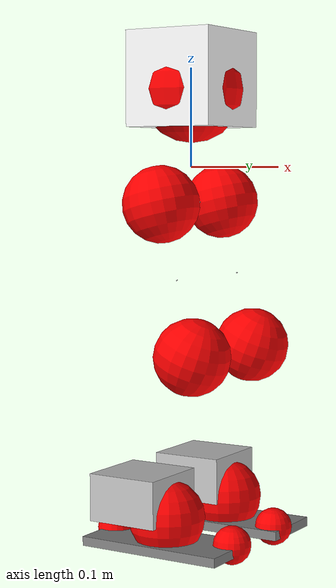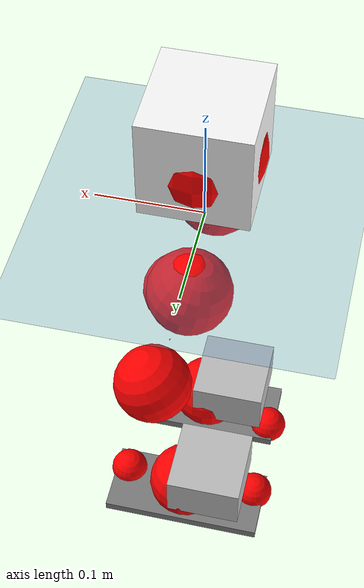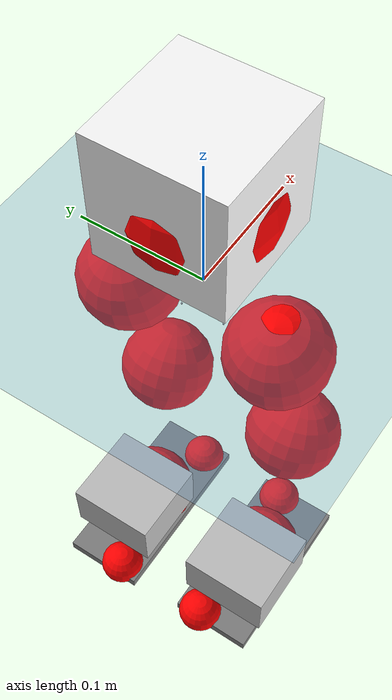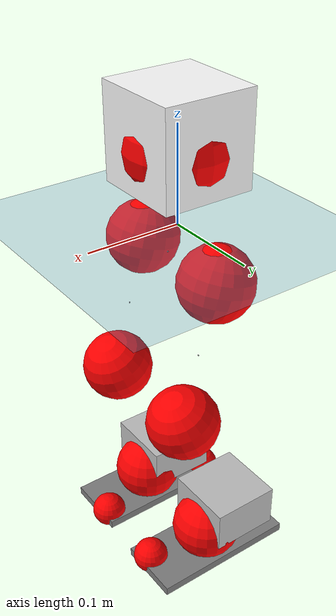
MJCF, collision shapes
<mujoco model="pi_12dof_release_v1">
  <compiler angle="radian" assetdir="assets" balanceinertia="true" inertiafromgeom="false"/>

  <option timestep="0.005" density="1.2" viscosity="2e-05"/>

  <size nkey="1"/>

  <visual>
    <quality shadowsize="8192"/>
    <map shadowclip="0.5"/>
  </visual>

  <default>
    <default class="/">
      <joint armature="0.01" damping="0.01" frictionloss="0.01"/>
      <geom contype="0" conaffinity="0" group="1" solref="-1000 -80"/>
      <site size="0.01 0.005 0.005" group="5"/>
      <general forcelimited="true" biastype="affine" gainprm="20" biasprm="0 -20 -0.5"/>
      <default class="foot">
        <geom size="0.0845 0.036 0.005" type="box" condim="6" group="4" priority="1" friction="0.9 0.2 0.2" solimp="0.015 1 0.005"/>
      </default>
      <default class="reward_collision_sphere">
        <geom group="5" rgba="1 0 0 1"/>
      </default>
    </default>
  </default>

  <asset>
    <texture type="skybox" colorspace="auto" name="//unnamed_texture_0" builtin="gradient" rgb1="0.95 0.95 0.95" rgb2="0.95 0.95 0.95" width="100" height="600"/>
    <texture type="2d" colorspace="auto" name="texplane" builtin="checker" rgb1="0.345 0.575 0.748" rgb2="0.345 0.575 0.748" markrgb="1 1 1" width="512" height="512"/>
    <material name="MatPlane" class="/" texture="texplane" texuniform="true" texrepeat="2 2" specular="0.9"/>
    <mesh name="baselink_1" class="/" file="baselink_1.STL"/>
    <mesh name="r_hip_pitch_link" class="/" file="r_hip_pitch_link.STL"/>
    <mesh name="r_hip_roll_link" class="/" file="r_hip_roll_link.STL"/>
    <mesh name="r_thigh_link" class="/" file="r_thigh_link.STL"/>
    <mesh name="r_calf_link" class="/" file="r_calf_link.STL"/>
    <mesh name="r_ankle_pitch_link" class="/" file="r_ankle_pitch_link.STL"/>
    <mesh name="r_ankle_roll_link" class="/" file="r_ankle_roll_link.STL"/>
    <mesh name="l_hip_pitch_link" class="/" file="l_hip_pitch_link.STL"/>
    <mesh name="l_hip_roll_link" class="/" file="l_hip_roll_link.STL"/>
    <mesh name="l_thigh_link" class="/" file="l_thigh_link.STL"/>
    <mesh name="l_calf_link" class="/" file="l_calf_link.STL"/>
    <mesh name="l_ankle_pitch_link" class="/" file="l_ankle_pitch_link.STL"/>
    <mesh name="l_ankle_roll_link" class="/" file="l_ankle_roll_link.STL"/>
  </asset>

  <worldbody>
    <geom name="floor" class="/" size="100 100 0.125" type="plane" group="0" material="MatPlane"/>
    <light name="toplight_shadow" class="/" pos="0 0 5" dir="0.0990148 0.0990148 -0.990148" type="directional" ambient="0.04 0.04 0.04" diffuse="0.55 0.55 0.55" specular="0.12 0.12 0.12"/>
    <light name="toplight_fill" class="/" pos="0 0 5" dir="0.0990148 0.0990148 -0.990148" type="directional" castshadow="false" ambient="0.04 0.04 0.04" diffuse="0.3 0.3 0.3" specular="0.08 0.08 0.08"/>
    <body name="trunk" pos="-0.000181211 0.000851697 -8.25811e-05" quat="1 -9.67594e-05 -0.000402909 -7.68484e-05">
      <inertial pos="0.00323006 -0.00147043 0.0441127" quat="0.695663 0.00585926 0.0116745 0.71825" mass="1.92442" diaginertia="0.0111696 0.00227416 0.0069322"/>
      <joint name="//unnamed_joint_0" type="free"/>
      <geom name="//unnamed_geom_1" class="/" type="mesh" density="0" rgba="1 1 1 1" mesh="baselink_1"/>
      <geom name="//unnamed_geom_2" class="/" size="0.0483523 0.0483523 0.0483523" pos="0 0 0.0888133" type="box" rgba="1 1 1 1"/>
      <geom name="//unnamed_geom_3" class="reward_collision_sphere" size="0.0531876" pos="0 0 0.0777116"/>
      <site name="imu" class="/" pos="0.000245123 -0.00155762 -0.00155652" size="0.00967047"/>
      <camera name="track" class="/" pos="0 -1.52087 0" quat="0.707107 0.707107 0 0" mode="trackcom"/>
      <camera name="ego_camera" class="/" pos="0.0772905 0 0.19983" quat="-0.5 -0.5 0.5 0.5"/>
      <body name="r_hip_pitch_link" pos="0.000834343 -0.016741 -0.036252" quat="0.992182 2.17569e-06 -0.124801 -1.40424e-05">
        <inertial pos="0.000949418 -0.0427019 -0.000331244" quat="-0.0229293 0.702902 -0.0264635 0.710424" mass="0.33664" diaginertia="0.000127429 2.53059e-05 0.000141463"/>
        <joint name="r_hip_pitch_joint" class="/" pos="0 0 0" axis="0.00411412 -0.999991 -0.000795022" stiffness="0.000384336" range="-1.76637 1.23243" armature="0.00979139" damping="0.0151572" frictionloss="0.00987611"/>
        <geom name="//unnamed_geom_4" class="/" type="mesh" density="0" rgba="0.75294 0.75294 0.75294 1" mesh="r_hip_pitch_link"/>
        <geom name="//unnamed_geom_5" class="/" size="0.000483523 0.000483523 0.000483523" type="box" rgba="0.75294 0.75294 0.75294 1"/>
        <body name="r_hip_roll_link" pos="0.000137854 -0.0432932 -0.000588849" quat="1 0.000159442 0.000175376 0.00027281">
          <inertial pos="-0.0009315 0.000629273 -0.0682198" quat="0.707158 -0.079306 -0.0812369 0.697882" mass="0.348379" diaginertia="0.000389094 7.15185e-05 0.00021709"/>
          <joint name="r_hip_roll_joint" class="/" pos="0 0 0" axis="-0.999995 -0.00291639 -0.00127173" range="-0.119915 0.4931" armature="0.00939672" damping="0.0061519" frictionloss="0.00970646"/>
          <geom name="//unnamed_geom_6" class="/" type="mesh" density="0" rgba="0.75294 0.75294 0.75294 1" mesh="r_hip_roll_link"/>
          <geom name="//unnamed_geom_7" class="/" size="0.000483523 0.000483523 0.000483523" type="box" rgba="0.75294 0.75294 0.75294 1"/>
          <geom name="//unnamed_geom_8" class="reward_collision_sphere" size="0.0386819"/>
          <body name="r_thigh_link" pos="-1.63059e-05 -0.00101018 -0.0768406" quat="1 -7.2159e-05 -0.000142222 -2.20944e-05">
            <inertial pos="0.000384802 0.0012965 -0.0524107" quat="0.737621 0.675215 -0.000668098 0.000557644" mass="0.10294" diaginertia="0.000147045 2.44519e-05 9.88349e-05"/>
            <joint name="r_thigh_joint" class="/" pos="0 0 0" axis="0.000114009 -0.00267481 -0.999996" range="-0.31547 0.578539" armature="0.00952426" damping="0" frictionloss="0.00996503"/>
            <geom name="//unnamed_geom_9" class="/" type="mesh" density="0" rgba="0.75294 0.75294 0.75294 1" mesh="r_thigh_link"/>
            <geom name="//unnamed_geom_10" class="/" size="0.000483523 0.000483523 0.000483523" type="box" rgba="0.75294 0.75294 0.75294 1"/>
            <body name="r_calf_link" pos="-0.00135127 -0.000716863 -0.0773257" quat="0.947606 -0.00016729 0.319442 -0.0001058">
              <inertial pos="-0.000952765 -0.00129477 -0.0771667" quat="0.99998 -0.00297799 -0.000477246 0.00549013" mass="0.739894" diaginertia="0.00413755 0.000890287 0.000294222"/>
              <joint name="r_calf_joint" class="/" pos="0 0 0" axis="-0.00313449 -0.999974 0.00647294" range="-1.63334 0.638738" armature="0.00965181" damping="0.0133528" frictionloss="0.00980088"/>
              <geom name="//unnamed_geom_11" class="/" type="mesh" density="0" rgba="0.75294 0.75294 0.75294 1" mesh="r_calf_link"/>
              <geom name="//unnamed_geom_12" class="/" size="0.000483523 0.000483523 0.000483523" type="box" rgba="0.75294 0.75294 0.75294 1"/>
              <geom name="//unnamed_geom_13" class="reward_collision_sphere" size="0.0386819"/>
              <body name="r_ankle_pitch_link" pos="0.00102096 0.00125853 -0.156134" quat="0.980058 4.35967e-05 -0.198712 -6.47212e-06">
                <inertial pos="0.00424054 0.00365067 0.000227717" quat="0.00132905 0.707213 -0.00201045 0.706997" mass="0.159476" diaginertia="0.000361387 5.6413e-05 0.000202107"/>
                <joint name="r_ankle_pitch_joint" class="/" pos="0 0 0" axis="0.0013122 -0.999999 0.000543058" stiffness="5.45051e-05" range="-1.28173 0.493484" armature="0.00958112" damping="0.00950805" frictionloss="0.00971547"/>
                <geom name="//unnamed_geom_14" class="/" type="mesh" density="0" rgba="0.75294 0.75294 0.75294 1" mesh="r_ankle_pitch_link"/>
                <geom name="//unnamed_geom_15" class="/" size="0.0377148 0.0386819 0.0241762" type="box" rgba="0.75294 0.75294 0.75294 1"/>
                <body name="r_ankle_roll_link" pos="0.0785112 0.00369332 0.000491832" quat="1 0.000140853 9.07614e-05 9.169e-06">
                  <inertial pos="-0.0236434 -0.000838463 -0.0162561" quat="0.558213 0.431182 0.436054 0.558872" mass="0.474562" diaginertia="0.00133613 0.000262629 0.000488546"/>
                  <joint name="r_ankle_roll_joint" class="/" pos="0 0 0" axis="-0.999986 -0.000825118 0.00513731" range="-0.131637 0.14296" armature="0.00976925" damping="0.00252828" frictionloss="0.00969598"/>
                  <geom name="//unnamed_geom_16" class="/" type="mesh" density="0" rgba="0.75294 0.75294 0.75294 1" mesh="r_ankle_roll_link"/>
                  <geom name="//unnamed_geom_17" class="/" type="mesh" rgba="0.75294 0.75294 0.75294 1" mesh="r_ankle_roll_link"/>
                  <geom name="right_foot" class="foot" size="0.0777782 0.0358841 0.00472593" pos="-0.0525576 0 -0.0488473"/>
                  <geom name="//unnamed_geom_19" class="reward_collision_sphere" size="0.0386819" pos="-0.051527 0 -0.0222033"/>
                  <geom name="//unnamed_geom_20" class="reward_collision_sphere" size="0.0193409" pos="0.0154581 0.0152087 -0.0444066"/>
                  <geom name="//unnamed_geom_21" class="reward_collision_sphere" size="0.0193409" pos="-0.123665 0.0152087 -0.0444066"/>
                  <site name="right_foot" class="foot" pos="-0.0525576 0 -0.0488473" size="0.00967047"/>
                </body>
              </body>
            </body>
          </body>
        </body>
      </body>
      <body name="l_hip_pitch_link" pos="-0.000267548 0.0166748 -0.0363526" quat="0.99217 0.000137221 -0.124894 5.74644e-05">
        <inertial pos="0.00147869 0.0404924 -0.00117657" quat="-0.0395839 0.705355 0.0315767 0.707043" mass="0.349581" diaginertia="0.000148932 2.71169e-05 0.000168703"/>
        <joint name="l_hip_pitch_joint" class="/" pos="0 0 0" axis="0.000419426 1 0.000269948" range="-1.24354 1.75143" armature="0.00979496" damping="0.0107848" frictionloss="0.00958461"/>
        <geom name="//unnamed_geom_22" class="/" type="mesh" density="0" rgba="0.75294 0.75294 0.75294 1" mesh="l_hip_pitch_link"/>
        <geom name="//unnamed_geom_23" class="/" size="0.000483523 0.000483523 0.000483523" type="box" rgba="0.75294 0.75294 0.75294 1"/>
        <body name="l_hip_roll_link" pos="0.000283935 0.0436199 -0.000168683" quat="1 0.000124824 -0.000186294 8.08258e-05">
          <inertial pos="-0.000651393 0.00104087 -0.0677542" quat="0.697381 -0.0763569 -0.0790218 0.708226" mass="0.348013" diaginertia="0.000391446 6.97597e-05 0.000216808"/>
          <joint name="l_hip_roll_joint" class="/" pos="0 0 0" axis="-0.999986 -0.000737863 -0.00521233" range="-0.50061 0.117292" armature="0.0100556" damping="0.00395751" frictionloss="0.0101047"/>
          <geom name="//unnamed_geom_24" class="/" type="mesh" density="0" rgba="0.75294 0.75294 0.75294 1" mesh="l_hip_roll_link"/>
          <geom name="//unnamed_geom_25" class="/" size="0.000483523 0.000483523 0.000483523" type="box" rgba="0.75294 0.75294 0.75294 1"/>
          <geom name="//unnamed_geom_26" class="reward_collision_sphere" size="0.0386819"/>
          <body name="l_thigh_link" pos="-0.000108054 -0.000569527 -0.0774364" quat="1 0.000183889 -0.000235147 0.000245634">
            <inertial pos="0.00053139 -0.00184865 -0.0534924" quat="0.675895 0.736997 0.00121959 0.000502868" mass="0.102336" diaginertia="0.000147386 2.44068e-05 9.88263e-05"/>
            <joint name="l_thigh_joint" class="/" pos="0 0 0" axis="0.000106829 -0.000306349 -1" range="-0.600016 0.30482" armature="0.0101233" damping="0.00214984" frictionloss="0.00965885"/>
            <geom name="//unnamed_geom_27" class="/" type="mesh" density="0" rgba="0.75294 0.75294 0.75294 1" mesh="l_thigh_link"/>
            <geom name="//unnamed_geom_28" class="/" size="0.000483523 0.000483523 0.000483523" type="box" rgba="0.75294 0.75294 0.75294 1"/>
            <body name="l_calf_link" pos="-0.00112122 8.18928e-05 -0.0777736" quat="0.947819 0.000296637 0.318809 5.9301e-05">
              <inertial pos="0.000313319 0.00251099 -0.0780507" quat="0.999984 0.00365222 -0.000811445 0.00418441" mass="0.742368" diaginertia="0.00413465 0.000899856 0.000301683"/>
              <joint name="l_calf_joint" class="/" pos="0 0 0" axis="-0.00258432 0.999997 -0.00042394" range="-0.652743 1.65353" armature="0.0100703" damping="0.00905363" frictionloss="0.00978391"/>
              <geom name="//unnamed_geom_29" class="/" type="mesh" density="0" rgba="0.75294 0.75294 0.75294 1" mesh="l_calf_link"/>
              <geom name="//unnamed_geom_30" class="/" size="0.000483523 0.000483523 0.000483523" type="box" rgba="0.75294 0.75294 0.75294 1"/>
              <geom name="//unnamed_geom_31" class="reward_collision_sphere" size="0.0386819"/>
              <body name="l_ankle_pitch_link" pos="0.00140586 0.000564248 -0.155087" quat="0.980028 1.29306e-05 -0.198858 5.92875e-05">
                <inertial pos="0.00515836 -0.000102039 -0.000602092" quat="-0.000378152 0.707085 0.00235175 0.707124" mass="0.160292" diaginertia="0.0003595 5.65891e-05 0.000205412"/>
                <joint name="l_ankle_pitch_joint" class="/" pos="0 0 0" axis="-0.000171002 1 -0.000634838" range="-0.515729 1.30217" armature="0.00961385" damping="0.00586205" frictionloss="0.0101099"/>
                <geom name="//unnamed_geom_32" class="/" type="mesh" density="0" rgba="0.75294 0.75294 0.75294 1" mesh="l_ankle_pitch_link"/>
                <geom name="//unnamed_geom_33" class="/" size="0.0377148 0.0386819 0.0241762" type="box" rgba="0.75294 0.75294 0.75294 1"/>
                <body name="l_ankle_roll_link" pos="0.0773156 0.000414593 -0.000694719" quat="1 1.55687e-05 -2.0101e-05 3.13394e-05">
                  <inertial pos="-0.024017 -0.000447623 -0.0157731" quat="0.559547 0.430487 0.43443 0.559338" mass="0.464556" diaginertia="0.0013203 0.000259984 0.000478706"/>
                  <joint name="l_ankle_roll_joint" class="/" pos="0 0 0" axis="-0.999999 -0.00117547 -0.000615462" range="-0.138873 0.154899" armature="0.00947356" damping="0.0029531" frictionloss="0.00979065"/>
                  <geom name="//unnamed_geom_34" class="/" type="mesh" density="0" rgba="0.75294 0.75294 0.75294 1" mesh="l_ankle_roll_link"/>
                  <geom name="//unnamed_geom_35" class="/" type="mesh" rgba="0.75294 0.75294 0.75294 1" mesh="l_ankle_roll_link"/>
                  <geom name="left_foot" class="foot" size="0.0818578 0.0358245 0.00487452" pos="-0.0525576 0 -0.0488473"/>
                  <geom name="//unnamed_geom_37" class="reward_collision_sphere" size="0.0386819" pos="-0.051527 0 -0.0222033"/>
                  <geom name="//unnamed_geom_38" class="reward_collision_sphere" size="0.0193409" pos="0.0154581 -0.0152087 -0.0444066"/>
                  <geom name="//unnamed_geom_39" class="reward_collision_sphere" size="0.0193409" pos="-0.123665 -0.0152087 -0.0444066"/>
                  <site name="left_foot" class="foot" pos="-0.0525576 0 -0.0488473" size="0.00967047"/>
                </body>
              </body>
            </body>
          </body>
        </body>
      </body>
    </body>
  </worldbody>

  <contact>
    <pair class="/" geom1="floor" geom2="right_foot" name="//unnamed_contact_1"/>
    <pair class="/" geom1="floor" geom2="left_foot" name="//unnamed_contact_0"/>
  </contact>

  <actuator>
    <general name="r_hip_pitch_joint" class="/" joint="r_hip_pitch_joint" forcerange="-20.6965 20.6965" gainprm="19.7488" biasprm="0 -19.7488 -0.467985"/>
    <general name="r_hip_roll_joint" class="/" joint="r_hip_roll_joint" forcerange="-21.0265 21.0265" gainprm="19.7488" biasprm="0 -19.7488 -0.467985"/>
    <general name="r_thigh_joint" class="/" joint="r_thigh_joint" forcerange="-20.3315 20.3315" gainprm="19.7488" biasprm="0 -19.7488 -0.467985"/>
    <general name="r_calf_joint" class="/" joint="r_calf_joint" forcerange="-20.0789 20.0789" gainprm="19.7488" biasprm="0 -19.7488 -0.467985"/>
    <general name="r_ankle_pitch_joint" class="/" joint="r_ankle_pitch_joint" forcerange="-20.3526 20.3526" gainprm="19.7488" biasprm="0 -19.7488 -0.467985"/>
    <general name="r_ankle_roll_joint" class="/" joint="r_ankle_roll_joint" forcerange="-19.8413 19.8413" gainprm="19.7488" biasprm="0 -19.7488 -0.467985"/>
    <general name="l_hip_pitch_joint" class="/" joint="l_hip_pitch_joint" forcerange="-19.7363 19.7363" gainprm="19.7488" biasprm="0 -19.7488 -0.467985"/>
    <general name="l_hip_roll_joint" class="/" joint="l_hip_roll_joint" forcerange="-20.3995 20.3995" gainprm="19.7488" biasprm="0 -19.7488 -0.467985"/>
    <general name="l_thigh_joint" class="/" joint="l_thigh_joint" forcerange="-20.1117 20.1117" gainprm="19.7488" biasprm="0 -19.7488 -0.467985"/>
    <general name="l_calf_joint" class="/" joint="l_calf_joint" forcerange="-20.9205 20.9205" gainprm="19.7488" biasprm="0 -19.7488 -0.467985"/>
    <general name="l_ankle_pitch_joint" class="/" joint="l_ankle_pitch_joint" forcerange="-20.4493 20.4493" gainprm="19.7488" biasprm="0 -19.7488 -0.467985"/>
    <general name="l_ankle_roll_joint" class="/" joint="l_ankle_roll_joint" forcerange="-20.8139 20.8139" gainprm="19.7488" biasprm="0 -19.7488 -0.467985"/>
  </actuator>

  <sensor>
    <gyro site="imu" name="imu_angular_velocity"/>
    <velocimeter site="imu" name="imu_linear_velocity"/>
    <framelinvel objtype="site" objname="left_foot" name="left_foot_global_linear_velocity"/>
    <framelinvel objtype="site" objname="right_foot" name="right_foot_global_linear_velocity"/>
  </sensor>

  <keyframe>
    <key name="home" qpos="0 0 0.291 1 0 0 0 0.4 0 0 -0.8 0.4 0 -0.4 0 0 0.8 -0.4 0"/>
  </keyframe>
</mujoco>
